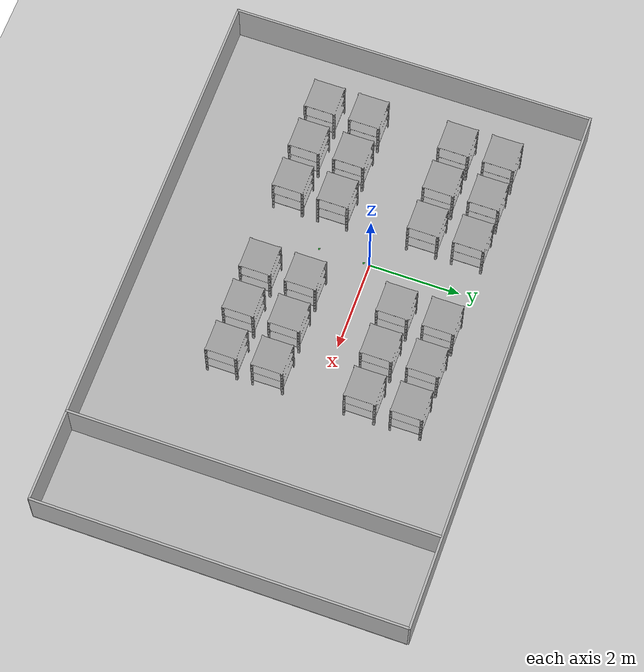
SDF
<?xml version="1.0"?>

<sdf version="1.5">
        <world name="default">
                <!-- physics engine {-->
                <physics name="default_physics" default="0" type="ode">
                        <gravity>0 0 -9.8066</gravity>
                        <ode>
                                <solver>
                                        <type>quick</type>
                                        <iters>10</iters>
                                        <sor>1.3</sor>
                                        <use_dynamic_moi_rescaling>0</use_dynamic_moi_rescaling>
                                </solver>
                                <constraints>
                                        <cfm>0</cfm>
                                        <erp>0.2</erp>
                                        <contact_max_correcting_vel>1000</contact_max_correcting_vel>
                                        <contact_surface_layer>0.001</contact_surface_layer>
                                </constraints>
                        </ode>
                        <max_step_size>0.004</max_step_size>
                        <real_time_factor>1</real_time_factor>
                        <real_time_update_rate>250</real_time_update_rate>
                        <magnetic_field>6.0e-06 2.3e-05 -4.2e-05</magnetic_field>
                </physics>

                <!-- setup shadows {-->
                <scene>
                        <shadows>false</shadows>
                        <sky>
                                <clouds />
                        </sky>
                </scene>

                <!-- sun {-->

                <light name='sun' type='directional'>
                        <pose frame=''>0 0 1000 0.4 0.2 0</pose>
                        <diffuse>1 1 1 1</diffuse>
                        <specular>0.6 0.6 0.6 1</specular>
                        <direction>0.1 0.1 -0.9</direction>
                        <attenuation>
                                <range>20</range>
                                <constant>0.5</constant>
                                <linear>0.01</linear>
                                <quadratic>0.001</quadratic>
                        </attenuation>
                        <cast_shadows>1</cast_shadows>
                </light>
                <!-- A ground plane -->
                <include>
                        <uri>model://ground_plane</uri>
                </include>

                <include>
                        <uri> model://qrcode</uri>
                        <pose> 0 -0.127 0.011 0 0 0 </pose>
                </include>

                <include>
                        <uri> model://qrcode</uri>
                        <pose> 0 -1.127 0.011 0 0 0 </pose>
                </include>

                <include>
                        <uri> model://warehouse</uri>
                        <pose>1.600644 -0.565783 0 0 0 0 </pose>
                </include>

                <!--Shelfs-->
                <model name="A1">
                        <include>
                                <uri> model://shelf</uri>
                                <pose> -2.938241 -2.052545 0.009981 0.000074 -0.000016 0.000406 </pose>
                        </include>
                </model>

                <model name="A2">
                        <include>
                                <uri> model://shelf</uri>
                                <pose> -1.938241 -2.052545 0.009981 0.000074 -0.000016 0.000406 </pose>
                        </include>
                </model>

                <model name="A3">
                        <include>
                                <uri> model://shelf</uri>
                                <pose> -0.938241 -2.052545 0.009981 0.000074 -0.000016 0.000406 </pose>
                        </include>
                </model>

                <model name="A4">
                        <include>
                                <uri> model://shelf</uri>
                                <pose> 1.061759 -2.052545 0.009981 0.000074 -0.000016 0.000406 </pose>
                        </include>
                </model>

                <model name="A5">
                        <include>
                                <uri> model://shelf</uri>
                                <pose> 2.061759 -2.052545 0.009981 0.000074 -0.000016 0.000406 </pose>
                        </include>
                </model>

                <model name="A6">
                        <include>
                                <uri> model://shelf</uri>
                                <pose> 3.061759 -2.052545 0.009981 0.000074 -0.000016 0.000406 </pose>
                        </include>
                </model>

                <model name="B1">
                        <include>
                                <uri> model://shelf</uri>
                                <pose> -2.938241 -1.052545 0.009981 0.000074 -0.000016 0.000406 </pose>
                        </include>
                </model>

                <model name="B2">
                        <include>
                                <uri> model://shelf</uri>
                                <pose> -1.938241 -1.052545 0.009981 0.000074 -0.000016 0.000406 </pose>
                        </include>
                </model>

                <model name="B3">
                        <include>
                                <uri> model://shelf</uri>
                                <pose> -0.938241 -1.052545 0.009981 0.000074 -0.000016 0.000406 </pose>
                        </include>
                </model>

                <model name="B4">
                        <include>
                                <uri> model://shelf</uri>
                                <pose> 1.061759 -1.052545 0.009981 0.000074 -0.000016 0.000406 </pose>
                        </include>
                </model>

                <model name="B5">
                        <include>
                                <uri> model://shelf</uri>
                                <pose> 2.061759 -1.052545 0.009981 0.000074 -0.000016 0.000406 </pose>
                        </include>
                </model>

                <model name="B6">
                        <include>
                                <uri> model://shelf</uri>
                                <pose> 3.061759 -1.052545 0.009981 0.000074 -0.000016 0.000406 </pose>
                        </include>
                </model>

                <model name="C1">
                        <include>
                                <uri> model://shelf</uri>
                                <pose> -2.938241 0.947455 0.009981 0.000074 -0.000016 0.000406 </pose>
                        </include>
                </model>

                <model name="C2">
                        <include>
                                <uri> model://shelf</uri>
                                <pose> -1.938241 0.947455 0.009981 0.000074 -0.000016 0.000406 </pose>
                        </include>
                </model>

                <model name="C3">
                        <include>
                                <uri> model://shelf</uri>
                                <pose> -0.938241 0.947455 0.009981 0.000074 -0.000016 0.000406 </pose>
                        </include>
                </model>

                <model name="C4">
                        <include>
                                <uri> model://shelf</uri>
                                <pose> 1.061759 0.947455 0.009981 0.000074 -0.000016 0.000406 </pose>
                        </include>
                </model>

                <model name="C5">
                        <include>
                                <uri> model://shelf</uri>
                                <pose> 2.061759 0.947455 0.009981 0.000074 -0.000016 0.000406 </pose>
                        </include>
                </model>

                <model name="C6">
                        <include>
                                <uri> model://shelf</uri>
                                <pose> 3.061759 0.947455 0.009981 0.000074 -0.000016 0.000406 </pose>
                        </include>
                </model>

                <model name="D1">
                        <include>
                                <uri> model://shelf</uri>
                                <pose> -2.938241 1.947455 0.009981 0.000074 -0.000016 0.000406 </pose>
                        </include>
                </model>

                <model name="D2">
                        <include>
                                <uri> model://shelf</uri>
                                <pose> -1.938241 1.947455 0.009981 0.000074 -0.000016 0.000406 </pose>
                        </include>
                </model>

                <model name="D3">
                        <include>
                                <uri> model://shelf</uri>
                                <pose> -0.938241 1.947455 0.009981 0.000074 -0.000016 0.000406 </pose>
                        </include>
                </model>

                <model name="D4">
                        <include>
                                <uri> model://shelf</uri>
                                <pose> 1.061759 1.947455 0.009981 0.000074 -0.000016 0.000406 </pose>
                        </include>
                </model>

                <model name="D5">
                        <include>
                                <uri> model://shelf</uri>
                                <pose> 2.061759 1.947455 0.009981 0.000074 -0.000016 0.000406 </pose>
                        </include>
                </model>

                <model name="D6">
                        <include>
                                <uri> model://shelf</uri>
                                <pose> 3.061759 1.947455 0.009981 0.000074 -0.000016 0.000406 </pose>
                        </include>
                </model>

                <!--Walls-->
                <model name="wall_1">
                        <pose>7.57 -0.57 0.5 0 0 0</pose>
                        <static>true</static>
                        <link name="link">
                                <inertial>
                                        <mass>1.0</mass>
                                        <inertia>
                                                <!-- inertias are tricky to compute -->
                                                <ixx>1</ixx> <!-- for a box: ixx = 0.083 * mass * (y*y + z*z) -->
                                                <ixy>0</ixy> <!-- for a box: ixy = 0 -->
                                                <ixz>0</ixz> <!-- for a box: ixz = 0 -->
                                                <iyy>1</iyy> <!-- for a box: iyy = 0.083 * mass * (x*x + z*z) -->
                                                <iyz>0</iyz> <!-- for a box: iyz = 0 -->
                                                <izz>1</izz> <!-- for a box: izz = 0.083 * mass * (x*x + y*y) -->
                                        </inertia>
                                </inertial>
                                <collision name="collision">
                                        <geometry>
                                                <box>
                                                        <size>0.05 8 1</size>
                                                </box>
                                        </geometry>
                                </collision>
                                <visual name="visual">
                                        <geometry>
                                                <box>
                                                        <size>0.05 8 1</size>
                                                </box>
                                        </geometry>
                                </visual>
                        </link>
                </model>

                <model name="wall_2">
                        <pose>-4.38 -0.57 0.5 0 0 0</pose>
                        <static>true</static>
                        <link name="link">
                                <inertial>
                                        <mass>1.0</mass>
                                        <inertia>
                                                <!-- inertias are tricky to compute -->
                                                <ixx>1</ixx> <!-- for a box: ixx = 0.083 * mass * (y*y + z*z) -->
                                                <ixy>0</ixy> <!-- for a box: ixy = 0 -->
                                                <ixz>0</ixz> <!-- for a box: ixz = 0 -->
                                                <iyy>1</iyy> <!-- for a box: iyy = 0.083 * mass * (x*x + z*z) -->
                                                <iyz>0</iyz> <!-- for a box: iyz = 0 -->
                                                <izz>1</izz> <!-- for a box: izz = 0.083 * mass * (x*x + y*y) -->
                                        </inertia>
                                </inertial>
                                <collision name="collision">
                                        <geometry>
                                                <box>
                                                        <size>0.05 8 1</size>
                                                </box>
                                        </geometry>
                                </collision>
                                <visual name="visual">
                                        <geometry>
                                                <box>
                                                        <size>0.05 8 1</size>
                                                </box>
                                        </geometry>
                                </visual>
                        </link>
                </model>

                <model name="wall_3">
                        <pose>1.59 -4.56 0.5 0 0 0</pose>
                        <static>true</static>
                        <link name="link">
                                <inertial>
                                        <mass>1.0</mass>
                                        <inertia>
                                                <!-- inertias are tricky to compute -->
                                                <ixx>1</ixx> <!-- for a box: ixx = 0.083 * mass * (y*y + z*z) -->
                                                <ixy>0</ixy> <!-- for a box: ixy = 0 -->
                                                <ixz>0</ixz> <!-- for a box: ixz = 0 -->
                                                <iyy>1</iyy> <!-- for a box: iyy = 0.083 * mass * (x*x + z*z) -->
                                                <iyz>0</iyz> <!-- for a box: iyz = 0 -->
                                                <izz>1</izz> <!-- for a box: izz = 0.083 * mass * (x*x + y*y) -->
                                        </inertia>
                                </inertial>
                                <collision name="collision">
                                        <geometry>
                                                <box>
                                                        <size>12 0.05 1</size>
                                                </box>
                                        </geometry>
                                </collision>
                                <visual name="visual">
                                        <geometry>
                                                <box>
                                                        <size>12 0.05 1</size>
                                                </box>
                                        </geometry>
                                </visual>
                        </link>
                </model>

                <model name="wall_4">
                        <pose>1.59 3.44 0.5 0 0 0</pose>
                        <static>true</static>
                        <link name="link">
                                <inertial>
                                        <mass>1.0</mass>
                                        <inertia>
                                                <!-- inertias are tricky to compute -->
                                                <ixx>1</ixx> <!-- for a box: ixx = 0.083 * mass * (y*y + z*z) -->
                                                <ixy>0</ixy> <!-- for a box: ixy = 0 -->
                                                <ixz>0</ixz> <!-- for a box: ixz = 0 -->
                                                <iyy>1</iyy> <!-- for a box: iyy = 0.083 * mass * (x*x + z*z) -->
                                                <iyz>0</iyz> <!-- for a box: iyz = 0 -->
                                                <izz>1</izz> <!-- for a box: izz = 0.083 * mass * (x*x + y*y) -->
                                        </inertia>
                                </inertial>
                                <collision name="collision">
                                        <geometry>
                                                <box>
                                                        <size>12 0.05 1</size>
                                                </box>
                                        </geometry>
                                </collision>
                                <visual name="visual">
                                        <geometry>
                                                <box>
                                                        <size>12 0.05 1</size>
                                                </box>
                                        </geometry>
                                </visual>
                        </link>
                </model>

                <model name="wall_5">
                        <pose>5.57 -0.57 0.5 0 0 0</pose>
                        <static>true</static>
                        <link name="link">
                                <inertial>
                                        <mass>1.0</mass>
                                        <inertia>
                                                <!-- inertias are tricky to compute -->
                                                <ixx>1</ixx> <!-- for a box: ixx = 0.083 * mass * (y*y + z*z) -->
                                                <ixy>0</ixy> <!-- for a box: ixy = 0 -->
                                                <ixz>0</ixz> <!-- for a box: ixz = 0 -->
                                                <iyy>1</iyy> <!-- for a box: iyy = 0.083 * mass * (x*x + z*z) -->
                                                <iyz>0</iyz> <!-- for a box: iyz = 0 -->
                                                <izz>1</izz> <!-- for a box: izz = 0.083 * mass * (x*x + y*y) -->
                                        </inertia>
                                </inertial>
                                <collision name="collision">
                                        <geometry>
                                                <box>
                                                        <size>0.05 8 1</size>
                                                </box>
                                        </geometry>
                                </collision>
                                <visual name="visual">
                                        <geometry>
                                                <box>
                                                        <size>0.05 8 1</size>
                                                </box>
                                        </geometry>
                                </visual>
                        </link>
                </model>

        </world>
</sdf>

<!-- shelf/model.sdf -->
<sdf version='1.6'>
  <model name='shelf'>
    <link name='link'>
      <inertial>
        <mass>0.1</mass>
        <inertia>
          <ixx>1</ixx>
          <ixy>0.00</ixy>
          <ixz>0.00</ixz>
          <iyy>1</iyy>
          <iyz>0.00</iyz>
          <izz>1</izz>
        </inertia>
      </inertial>
      <pose frame=''>0 0 0 0 -0 0</pose>
      <visual name='visual'>
        <pose frame=''>0 0 0 0 -0 0</pose>
        <geometry>
          <mesh>
            <uri>model://shelf/meshes/shelf.dae</uri>
            <scale>1 1 1</scale>
          </mesh>
        </geometry>
        <transparency>0</transparency>
        <cast_shadows>1</cast_shadows>
      </visual>
      <collision name='collision'>
        <laser_retro>0</laser_retro>
        <max_contacts>10</max_contacts>
        <pose frame=''>0 0 0 0 -0 0</pose>
        <geometry>
          <mesh>
            <uri>model://shelf/meshes/shelf.dae</uri>
            <scale>1 1 1</scale>
          </mesh>
        </geometry>
        <surface>
          <friction>
            <ode>
              <mu>1</mu>
              <mu2>1</mu2>
              <fdir1>0 0 0</fdir1>
              <slip1>0</slip1>
              <slip2>0</slip2>
            </ode>
            <torsional>
              <coefficient>1</coefficient>
              <patch_radius>1</patch_radius>
              <surface_radius>1</surface_radius>
              <use_patch_radius>1</use_patch_radius>
              <ode>
                <slip>0</slip>
              </ode>
            </torsional>
          </friction>
          <bounce>
            <restitution_coefficient>1</restitution_coefficient>
            <threshold>1e+06</threshold>
          </bounce>
          <contact>
            <collide_without_contact>0</collide_without_contact>
            <collide_without_contact_bitmask>1</collide_without_contact_bitmask>
            <collide_bitmask>1</collide_bitmask>
            <ode>
              <soft_cfm>0</soft_cfm>
              <soft_erp>0.2</soft_erp>
              <kp>1e+13</kp>
              <kd>1</kd>
              <max_vel>0.01</max_vel>
              <min_depth>0</min_depth>
            </ode>
            <bullet>
              <split_impulse>1</split_impulse>
              <split_impulse_penetration_threshold>-0.01</split_impulse_penetration_threshold>
              <soft_cfm>0</soft_cfm>
              <soft_erp>0.2</soft_erp>
              <kp>1e+13</kp>
              <kd>1</kd>
            </bullet>
          </contact>
        </surface>
      </collision>
    </link>
    <static>0</static>
    <allow_auto_disable>1</allow_auto_disable>
  </model>
</sdf>

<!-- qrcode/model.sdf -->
<sdf version="1.5">
  <model name="qrcode">
    <static>true</static>

    <link name="link">
      <collision name="collision">
        <geometry>
          <mesh>
            <uri>model://qrcode/meshes/qrcode.dae</uri>
          </mesh>
        </geometry>
      </collision>
      <visual name="visual">
        <geometry>
          <mesh>
            <uri>model://qrcode/meshes/qrcode.dae</uri>
          </mesh>
        </geometry>
        <material>
          <script>
            <uri>file://media/materials/scripts/gazebo.material</uri>
            <name>Gazebo/Green</name>
          </script>
        </material>
      </visual>
    </link>
  </model>
</sdf>

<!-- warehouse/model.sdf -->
<sdf version="1.5">
  <model name="warehouse">
    <static>true</static>

    <link name="link">
      <collision name="collision">
        <geometry>
          <mesh>
            <uri>model://warehouse/meshes/warehouse.dae</uri>
            <scale>1 1 1</scale>
          </mesh>
        </geometry>
      </collision>
      <visual name="visual">
        <geometry>
          <mesh>
            <uri>model://warehouse/meshes/warehouse.dae</uri>
            <scale>1 1 1</scale>
          </mesh>
        </geometry>
      </visual>
    </link>
  </model>
</sdf>
